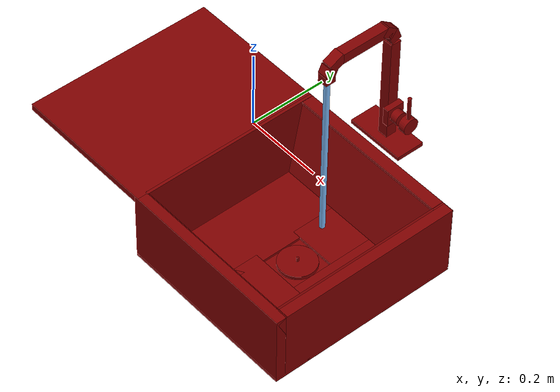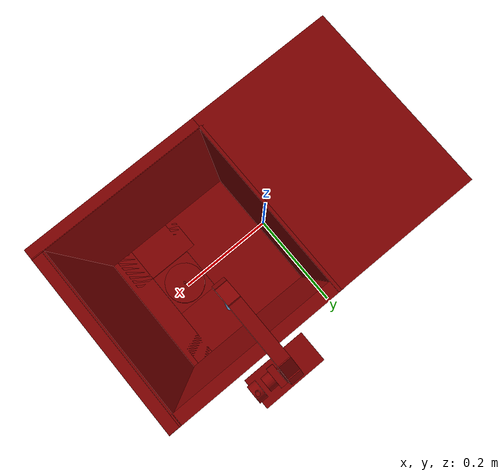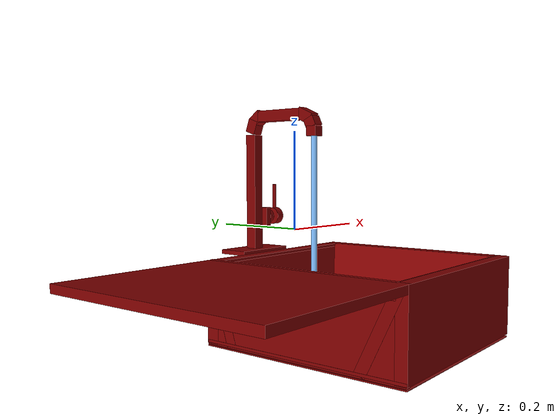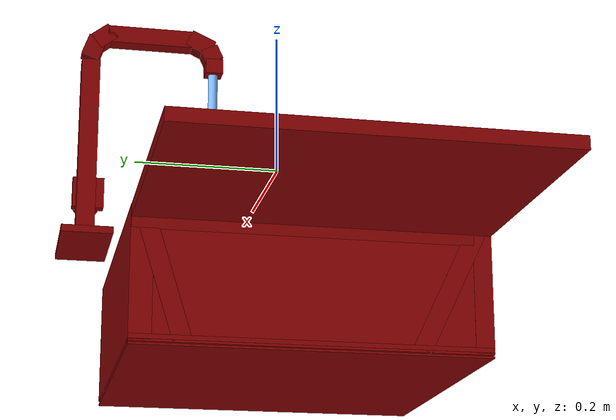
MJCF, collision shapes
<mujoco model="model">
  <compiler angle="radian"/>
  <asset>
    <mesh file="visuals/handle.obj" name="handle_vis"/>
    <mesh file="visuals/Body001.obj" name="Body001_vis"/>
    <mesh file="visuals/Body002.obj" name="Body002_vis"/>
    <mesh file="visuals/Funnel001.obj" name="Funnel001_vis"/>
    <mesh file="visuals/spout.obj" name="spout_vis"/>
    <texture file="visuals/T_BC001.png" name="Body001_material" type="2d"/>
    <material name="Body001_material" rgba="1 1 1 1.0" texture="Body001_material" shininess="0.2512328028678894" specular="0.5"/>
    <texture file="visuals/T_BC001.png" name="handle_material" type="2d"/>
    <material name="handle_material" rgba="1 1 1 1.0" texture="handle_material" shininess="0.2512328028678894" specular="1"/>
    <texture file="visuals/T_BC001.png" name="Body002_material" type="2d"/>
    <material name="Body002_material" rgba="1 1 1 1.0" texture="Body002_material" shininess="0.2512328028678894" specular="1"/>
    <texture file="visuals/T_BC001.png" name="spout_material" type="2d"/>
    <material name="spout_material" rgba="1 1 1 1.0" texture="spout_material" shininess="0.2512328028678894" specular="8"/>
    <texture file="visuals/T_BC001.png" name="Funnel001_material" type="2d"/>
    <material name="Funnel001_material" rgba="1 1 1 1.0" texture="Funnel001_material" shininess="0.2512328028678894" specular="1"/>
  </asset>
  <default>
    <default class="visual">
      <geom conaffinity="0" contype="0" group="1" type="mesh"/>
    </default>
    <default class="collision">
      <geom group="0" rgba="0.5 0 0 0.5"/>
    </default>
    <default class="spawn">
      <geom group="0" rgba="1 1 1 0.5" contype="0" conaffinity="0"/>
      <site group="0" rgba="1 1 1 0.5"/>
    </default>
    <default class="region">
      <geom group="1" conaffinity="0" contype="0" rgba="0 1 0 0"/>
    </default>
  </default>
  <worldbody>
    <body>
      <body name="object">
        <geom mesh="Body001_vis" type="mesh" solimp="0.998 0.998 0.001" solref="0.001 1" density="100" friction="0.95 0.3 0.1" class="visual" material="Body001_material"/>
        <geom class="collision" type="box" pos="-0.23289699852466583 -0.04365352913737297 -0.08524444699287415" size="0.19190281629562378 0.25126296281814575 0.0089624198153615" quat="1.0 0.0 0.0 0.0"/>
        <geom class="collision" type="box" pos="0.18643322587013245 -0.0433998703956604 -0.26637470722198486" size="0.23843374848365784 0.2510093152523041 0.0015203842194750905" quat="1.0 0.0 0.0 0.0"/>
        <geom class="collision" type="box" pos="0.18643322587013245 -0.2815038859844208 -0.16855724155902863" size="0.2384282648563385 0.013468274846673012 0.09219275414943695" quat="1.0 0.0 0.0 0.0"/>
        <geom class="collision" type="box" pos="0.18643322587013245 -0.2355944961309433 -0.1701299101114273" size="0.23843194544315338 0.013186854310333729 0.09803538769483566" quat="0.9749208688735962 0.22255180776119232 4.9416421612240565e-17 3.913559855615428e-24"/>
        <geom class="collision" type="box" pos="0.18643322587013245 0.19233688712120056 -0.16855724155902863" size="0.2384287714958191 0.01569736748933792 0.09219300746917725" quat="1.0 0.0 0.0 0.0"/>
        <geom class="collision" type="box" pos="0.18643322587013245 0.16311857104301453 -0.17109794914722443" size="0.23843221366405487 0.013186870142817497 0.09071974456310272" quat="0.98871910572052 -0.14978152513504028 3.325822589579297e-17 2.5992294323110638e-24"/>
        <geom class="collision" type="box" pos="-0.037027619779109955 -0.031026437878608704 -0.16800856590270996" size="0.008721581660211086 0.23822125792503357 0.09219479560852051" quat="0.9986517429351807 -3.2459631321720794e-16 -0.05191035941243172 -6.974620880839666e-09"/>
        <geom class="collision" type="box" pos="0.4113615155220032 -0.031026439741253853 -0.16855724155902863" size="0.013616309501230717 0.23821872472763062 0.09219352155923843" quat="1.0 0.0 0.0 0.0"/>
        <geom class="collision" type="box" pos="0.36237597465515137 -0.03081962652504444 -0.16950343549251556" size="0.013186951167881489 0.2384280413389206 0.09741795808076859" quat="0.97537761926651 -5.9184724653170255e-15 0.22054137289524078 2.9631680220632006e-08"/>
        <geom class="collision" type="box" pos="-0.04643679037690163 -0.0433998703956604 -0.17733365297317505" size="0.005442608613520861 0.2510093152523041 0.08596532791852951" quat="1.0 0.0 0.0 0.0"/>
        <geom class="collision" type="box" pos="0.049792274832725525 -0.0433998703956604 -0.25659680366516113" size="0.10179278999567032 0.2510093152523041 0.0032179595436900854" quat="1.0 0.0 0.0 0.0"/>
        <geom class="collision" type="box" pos="0.2126966416835785 -0.14550378918647766 -0.25659680366516113" size="0.08369192481040955 0.04680139571428299 0.0032179595436900854" quat="1.0 0.0 0.0 0.0"/>
        <geom class="collision" type="box" pos="0.33869725465774536 -0.0433998703956604 -0.25659680366516113" size="0.08369192481040955 0.2510093152523041 0.0032179595436900854" quat="1.0 0.0 0.0 0.0"/>
        <geom class="collision" type="box" pos="0.2126966416835785 0.069204181432724 -0.25659680366516113" size="0.08369192481040955 0.059473875910043716 0.0032179595436900854" quat="1.0 0.0 0.0 0.0"/>
        <body name="handle">
          <joint axis="1.0 0.0 0.0" pos="0.2222273200750351 0.25211796164512634 0.005611753091216087" limited="true" name="handle_joint_hinge_0" type="hinge" range="-0.7853981633974483 0.7853981633974483" damping="1" frictionloss="1" armature=".01" stiffness="0.05"/>
          <joint axis="0.0 1.0 0.0" pos="0.2222273200750351 0.25211796164512634 0.005611753091216087" limited="true" name="handle_joint_hinge_1" type="hinge" range="0.0 0.17453292519943295" damping="1" frictionloss="1" armature=".01" stiffness="0.05"/>
          <geom mesh="handle_vis" type="mesh" solimp="0.998 0.998 0.001" solref="0.001 1" density="100" friction="0.95 0.3 0.1" class="visual" material="handle_material"/>
          <geom class="collision" type="cylinder" pos="0.2268594205379486 0.25229987502098083 0.05274447053670883" size="0.004608677700161934 0.033719781786203384" quat="1.0 0.0 0.0 0.0"/>
          <geom class="collision" type="cylinder" pos="0.22644643485546112 0.25229987502098083 0.00631802948191762" size="0.020698385313153267 0.010021992959082127" quat="0.7071068286895752 -4.750302551315144e-08 0.7071067094802856 4.7503014855010406e-08"/>
        </body>
        <body name="Body002">
          <geom mesh="Body002_vis" type="mesh" solimp="0.998 0.998 0.001" solref="0.001 1" density="100" friction="0.95 0.3 0.1" class="visual" material="Body002_material"/>
          <geom class="collision" type="box" pos="0.156802698969841 0.2575038969516754 -0.07637464255094528" size="0.0777040645480156 0.0369562953710556 0.005091224331408739" quat="1.0 0.0 0.0 0.0"/>
          <geom class="collision" type="box" pos="0.15676836669445038 0.25707149505615234 0.06839175522327423" size="0.013505566865205765 0.01369401067495346 0.13990825414657593" quat="1.0 0.0 0.0 0.0"/>
          <geom class="collision" type="box" pos="0.17777979373931885 0.2526951730251312 0.006573480553925037" size="0.007939639501273632 0.023168575018644333 0.023161763325333595" quat="1.0 0.0 0.0 0.0"/>
          <geom class="collision" type="cylinder" pos="0.19519153237342834 0.25229987502098083 0.006318028550595045" size="0.01662694849073887 0.010399351827800274" quat="0.7071068286895752 -4.750302551315144e-08 0.7071067094802856 4.7503014855010406e-08"/>
          <body name="spout">
            <joint axis="0.0 0.0 1.0" pos="0.15676996111869812 0.257235586643219 0.23276996612548828" limited="true" name="spout_joint" range="-0.7853981633974483 0.7853981633974483" type="hinge" damping="1" frictionloss="1" armature=".01" stiffness="0.05"/>
            <site type="cylinder" rgba="0.5 0.75 1 1" size="0.007166864350438118 0.24760331213474274" pos="0.15734650194644928 0.07035251706838608 -0.018653176724910736" name="water"/>
            <geom mesh="spout_vis" type="mesh" solimp="0.998 0.998 0.001" solref="0.001 1" density="100" friction="0.95 0.3 0.1" class="visual" material="spout_material"/>
            <geom class="collision" type="box" pos="0.1566661298274994 0.25357529520988464 0.2291136533021927" size="0.01324722170829773 0.01373068243265152 0.016411205753684044" quat="0.9848077297210693 0.17364826798439026 0.0 0.0"/>
            <geom class="collision" type="box" pos="0.1566661298274994 0.16898679733276367 0.2524245083332062" size="0.01324722170829773 0.0636536106467247 0.013066796585917473" quat="1.0 0.0 0.0 0.0"/>
            <geom class="collision" type="box" pos="0.1566661298274994 0.2384842336177826 0.248003289103508" size="0.01324722170829773 0.013172360137104988 0.015646377578377724" quat="0.8965427279472351 0.4429572522640228 0.0 0.0"/>
            <geom class="collision" type="box" pos="0.1564749777317047 0.0700487568974495 0.21215471625328064" size="0.013303152285516262 0.013185113668441772 0.011416430585086346" quat="1.0 0.0 0.0 0.0"/>
            <geom class="collision" type="box" pos="0.1566072702407837 0.07417762279510498 0.23130857944488525" size="0.013303152285516262 0.013744930736720562 0.011416427791118622" quat="0.21372148394584656 0.9768946170806885 0.0 0.0"/>
            <geom class="collision" type="box" pos="0.1566661298274994 0.09123266488313675 0.24778765439987183" size="0.01324722170829773 0.013165219686925411 0.019625896587967873" quat="0.539652943611145 0.8418875932693481 0.0 0.0"/>
          </body>
        </body>
        <body name="Funnel001">
          <joint axis="0.0 0.0 1.0" pos="0.2026340663433075 -0.04173346608877182 -0.250520259141922" limited="true" name="Funnel001_joint" range="0.0 0.07" type="slide" damping="1" frictionloss="1" armature=".01" stiffness="0.05"/>
          <geom mesh="Funnel001_vis" type="mesh" solimp="0.998 0.998 0.001" solref="0.001 1" density="100" friction="0.95 0.3 0.1" class="visual" material="Funnel001_material"/>
          <geom class="collision" type="cylinder" pos="0.20287871360778809 -0.042237289249897 -0.255550742149353" size="0.04779846593737602 0.004468381870537996" quat="1.0 0.0 0.0 0.0"/>
          <geom class="collision" type="cylinder" pos="0.20263472199440002 -0.04176364839076996 -0.24669970571994781" size="0.002910300623625517 0.006427445448935032" quat="1.0 0.0 0.0 0.0"/>
        </body>
        <geom class="region" name="reg_main" type="box" pos="1.4901161193847656e-08 -0.04345216602087021 -0.1709299236536026" size="0.4247997999191284 0.25095704197883606 0.0945684164762497"/>
        <geom class="region" name="reg_basin" type="box" pos="0.18005334958434105 -0.041393399238586426 -0.17331353947520256" size="0.21338904276490211 0.22329768538475037 0.09138594940304756"/>
      </body>
    </body>
  </worldbody>
  <actuator>
    <motor name="handle_joint_hinge_0_actuator" joint="handle_joint_hinge_0" gear="10"/>
    <motor name="handle_joint_hinge_1_actuator" joint="handle_joint_hinge_1" gear="10"/>
    <motor name="Funnel001_joint_actuator" joint="Funnel001_joint" gear="5"/>
    <motor name="spout_joint_actuator" joint="spout_joint" gear="10"/>
  </actuator>
</mujoco>
